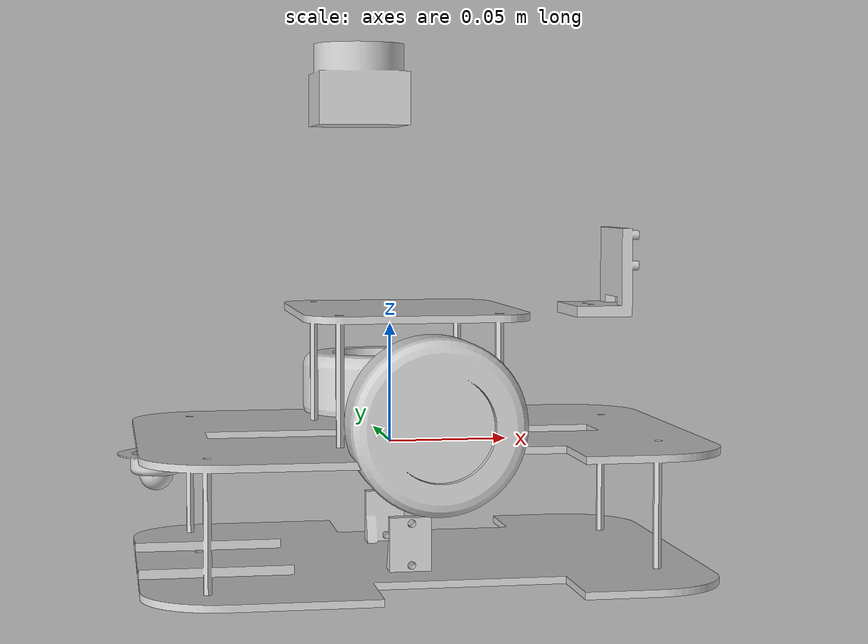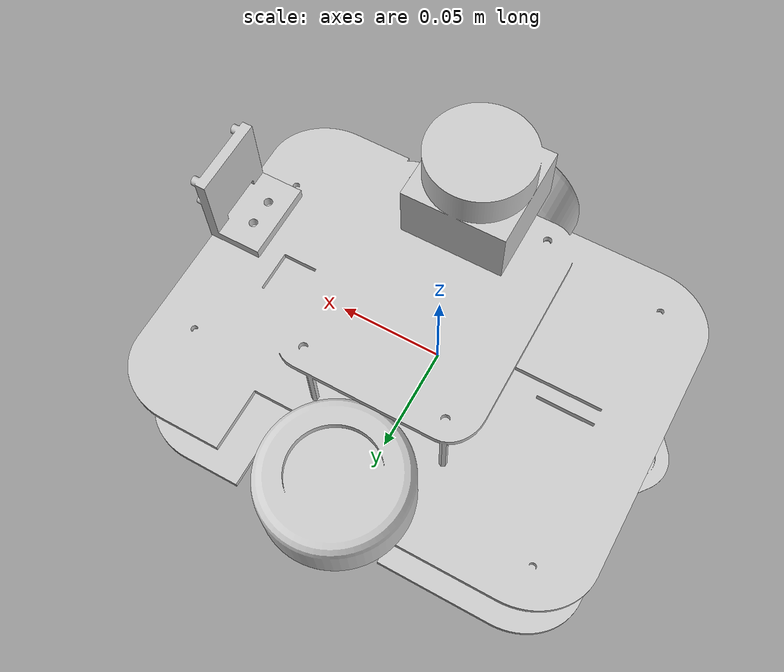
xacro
<?xml version="1.0"?>
<!-- created with Phobos 1.0.1 "Capricious Choutengan" -->
  <robot xmlns:xacro="http://www.ros.org/wiki/xacro"  name="robot">

    <link name="base_link"></link>

    <link name="link_camera">
      <inertial>
        <origin xyz="0 0 0" rpy="0 0 0"/>
        <mass value="1.0"/>
        <inertia ixx="0.00029" ixy="0" ixz="0" iyy="0.00027" iyz="0" izz="0.00015"/>
      </inertial>
      <visual name="camera">
        <origin xyz="0 0 0" rpy="0 -1.5708 0"/>
        <geometry>
          <mesh filename="file://$(find wally)/meshes/stl/Cube.018.stl" scale="1.0 1.0 1.0"/>
        </geometry>
        <material name="black"/>
      </visual>
    </link>

    <link name="link_chassis">
      <xacro:inertial_box mass="0.5" x="0" y="0" z="0">
          <origin xyz="0 0 0" rpy="0 0 0"/>
      </xacro:inertial_box>
      <visual name="chassis">
        <origin xyz="0 0 0" rpy="0 0 0"/>
        <geometry>
          <mesh filename="file://$(find wally)/meshes/stl/Cube.023.stl" scale="1.0 1.0 1.0"/>
        </geometry>
        <material name="yellow"/>
      </visual>
      <collision name="chassis">
        <origin xyz="-0.00938 0.00061 0.0515" rpy="0 0 0"/>
        <geometry>
          <box size="0.23282 0.175 0.109"/>
        </geometry>
      </collision>
    </link>

    <link name="link_laser">

      <visual name="laser">
        <origin xyz="0 0 0" rpy="0 0 0"/>
        <geometry>
          <mesh filename="file://$(find wally)/meshes/stl/Cube.019.stl" scale="1.0 1.0 1.0"/>
        </geometry>
        <material name="black"/>
      </visual>
      <collision name="laser">
        <origin xyz="0 0 -0.01048" rpy="0 0 0"/>
        <geometry>
          <box size="0.038 0.038 0.034"/>
        </geometry>
      </collision>
    </link>

    <link name="link_wheel_caster">

      <visual name="wheel_caster">
        <origin xyz="0 0 0" rpy="0 0 0"/>
        <geometry>
          <mesh filename="file://$(find wally)/meshes/stl/Cube.020.stl" scale="1.0 1.0 1.0"/>
        </geometry>
        <material name="black"/>
      </visual>
      <collision name="wheel_caster">
        <origin xyz="2e-05 0 0.01285" rpy="0 0 0"/>
        <geometry>
          <sphere radius="0.0235"/>
        </geometry>
      </collision>
    </link>

    <link name="link_wheel_left">

      <visual name="wheel_left">
        <origin xyz="0 0 0" rpy="1.5708 0 0"/>
        <geometry>
          <mesh filename="file://$(find wally)/meshes/stl/Cylinder.036.stl" scale="1.0 1.0 1.0"/>
        </geometry>
        <material name="black"/>
      </visual>
      <collision name="wheel_left">
        <origin xyz="0 0 -0.00264" rpy="-3.14159 0 0"/>
        <geometry>
          <cylinder radius="0.03446" length="0.03"/>
        </geometry>
      </collision>
    </link>

    <link name="link_wheel_right">

      <visual name="wheel_right">
        <origin xyz="0 0 0" rpy="-1.5708 0 0"/>
        <geometry>
          <mesh filename="file://$(find wally)/meshes/stl/Cylinder.037.stl" scale="1.0 1.0 1.0"/>
        </geometry>
        <material name="black"/>
      </visual>
      <collision name="wheel_right">
        <origin xyz="0 0 -0.00264" rpy="0 0 0"/>
        <geometry>
          <cylinder radius="0.03446" length="0.03"/>
        </geometry>
      </collision>
    </link>

    <joint name="joint_chassis" type="fixed">
      <origin xyz="0 0 0" rpy="0 0 0"/>
      <parent link="base_link"/>
      <child link="link_chassis"/>
    </joint>

    <joint name="joint_camera" type="fixed">
      <origin xyz="0.0995 0.00066 0.07561" rpy="0 1.5708 0"/>
      <parent link="link_chassis"/>
      <child link="link_camera"/>
    </joint>

    <joint name="joint_laser" type="fixed">
      <origin xyz="-0.01313 0.00061 0.13348" rpy="0 0 0"/>
      <parent link="link_chassis"/>
      <child link="link_laser"/>
    </joint>

    <joint name="joint_wheel_caster" type="fixed">
      <origin xyz="-0.09896 0.00061 -0.00789" rpy="0 0 0"/>
      <parent link="link_chassis"/>
      <child link="link_wheel_caster"/>
    </joint>

    <joint name="joint_wheel_left" type="continuous">
      <origin xyz="0.00602 0.07967 0.01615" rpy="-1.5708 0 0"/>
      <parent link="link_chassis"/>
      <child link="link_wheel_left"/>
      <axis xyz="0 0 1.0"/>
      <limit effort="0" velocity="0"/>
    </joint>

    <joint name="joint_wheel_right" type="continuous">
      <origin xyz="0.00602 -0.07967 0.01615" rpy="1.5708 0 0"/>
      <parent link="link_chassis"/>
      <child link="link_wheel_right"/>
      <axis xyz="0 0 1.0"/>
      <limit effort="0" velocity="0"/>
    </joint>

    <material name="black">
      <color rgba="0.8 0.8 0.8 1.0"/>
    </material>

    <material name="yellow">
      <color rgba="0.8 0.8 0.8 1.0"/>
    </material>

  </robot>
